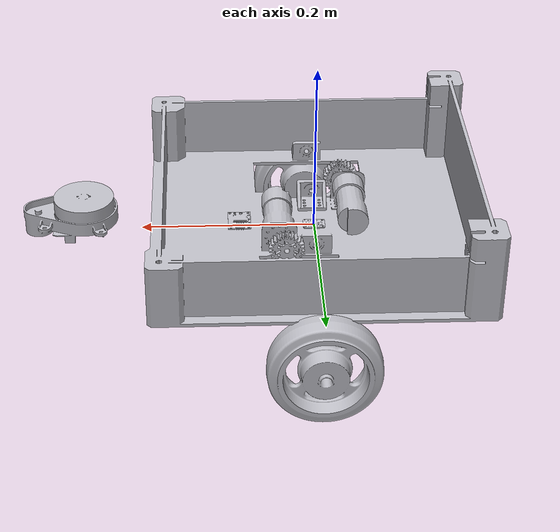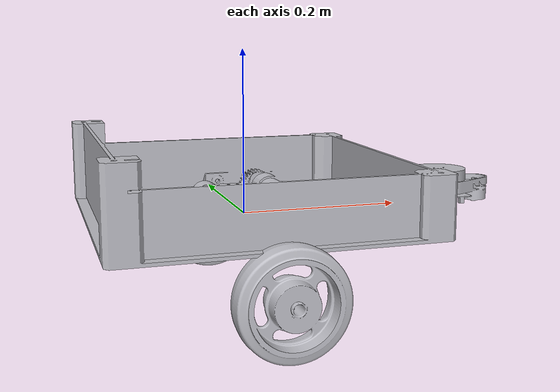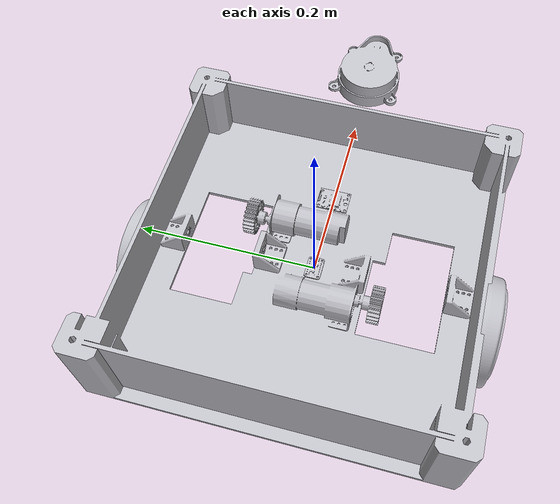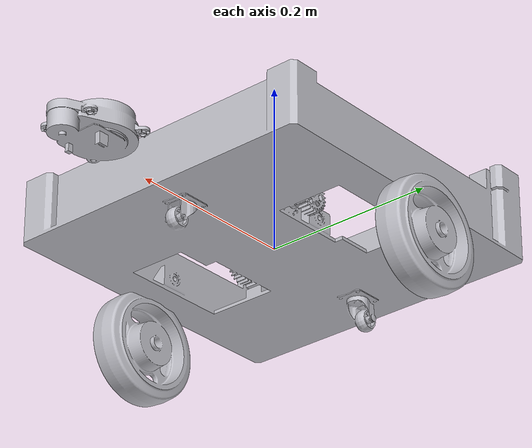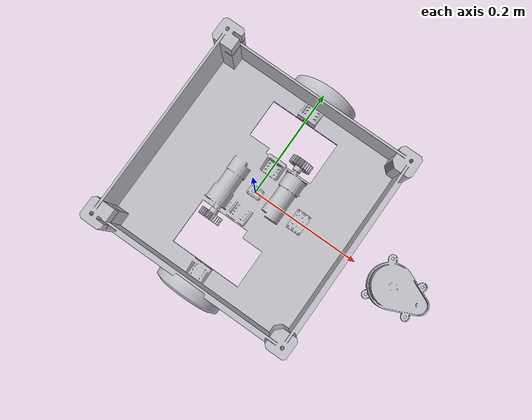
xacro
<?xml version="1.0" ?>
<robot name="mr_robot" xmlns:xacro="http://www.ros.org/wiki/xacro">

<xacro:include filename="$(find mr_robot_description)/urdf/materials.xacro" />
<xacro:include filename="$(find mr_robot_description)/urdf/mr_robot.trans" />
<xacro:include filename="$(find mr_robot_description)/urdf/mr_robot.gazebo" />

<!-- BASE FOOTPRINT LINK -->

<link name="base_footprint">
</link>

<joint name="base_link_joint" type="fixed">
  <parent link="base_footprint"/>
  <child link="base_link"/>
  <origin xyz="0 0 0" rpy="0 0 0"/>
</joint>

<link name="base_link">
  <inertial>
    <origin xyz="0.012766113385218509 0.001494146835147567 -0.03149101238341765" rpy="0 0 0"/>
    <mass value="12.614502148022185"/>
    <inertia ixx="0.186871" iyy="0.487701" izz="0.654211" ixy="0.000719" iyz="0.000234" ixz="-0.008931"/>
  </inertial>
  <visual>
    <origin xyz="0 0 0" rpy="0 0 0"/>
    <geometry>
      <mesh filename="file://$(find mr_robot_description)/meshes/base_link.stl" scale="0.001 0.001 0.001"/>
    </geometry>
    <material name="silver"/>
  </visual>
  <collision>
    <origin xyz="0 0 0" rpy="0 0 0"/>
    <geometry>
      <mesh filename="file://$(find mr_robot_description)/meshes/base_link.stl" scale="0.001 0.001 0.001"/>
    </geometry>
  </collision>
</link>

<link name="right_wheel__1">
  <inertial>
    <origin xyz="1.7607591147781841e-15 -0.01799999999998969 -8.17274483436159e-08" rpy="0 0 0"/>
    <mass value="2.2573668453470317"/>
    <inertia ixx="0.002744" iyy="0.005023" izz="0.002744" ixy="0.0" iyz="-0.0" ixz="-0.0"/>
  </inertial>
  <visual>
    <origin xyz="-0.0 0.172825 0.0556" rpy="0 0 0"/>
    <geometry>
      <mesh filename="file://$(find mr_robot_description)/meshes/right_wheel__1.stl" scale="0.001 0.001 0.001"/>
    </geometry>
    <material name="silver"/>
  </visual>
  <collision>
    <origin xyz="-0.0 0.172825 0.0556" rpy="0 0 0"/>
    <geometry>
      <mesh filename="file://$(find mr_robot_description)/meshes/right_wheel__1.stl" scale="0.001 0.001 0.001"/>
    </geometry>
  </collision>
</link>

<link name="left_wheel_1">
  <inertial>
    <origin xyz="-2.5183111525986615e-15 0.019999999999999296 1.594976928309677e-11" rpy="0 0 0"/>
    <mass value="2.257366845347031"/>
    <inertia ixx="0.002744" iyy="0.005023" izz="0.002744" ixy="0.0" iyz="-0.0" ixz="-0.0"/>
  </inertial>
  <visual>
    <origin xyz="0.0 -0.181075 0.0556" rpy="0 0 0"/>
    <geometry>
      <mesh filename="file://$(find mr_robot_description)/meshes/left_wheel_1.stl" scale="0.001 0.001 0.001"/>
    </geometry>
    <material name="silver"/>
  </visual>
  <collision>
    <origin xyz="0.0 -0.181075 0.0556" rpy="0 0 0"/>
    <geometry>
      <mesh filename="file://$(find mr_robot_description)/meshes/left_wheel_1.stl" scale="0.001 0.001 0.001"/>
    </geometry>
  </collision>
</link>

<link name="imu_1">
  <inertial>
    <origin xyz="0.0004855581971456934 1.4148081224101791e-05 0.0009685965633060389" rpy="0 0 0"/>
    <mass value="0.005695581362858868"/>
    <inertia ixx="0.0" iyy="0.0" izz="0.0" ixy="0.0" iyz="-0.0" ixz="-0.0"/>
  </inertial>
  <visual>
    <origin xyz="-0.0 -0.0 -0.0" rpy="0 0 0"/>
    <geometry>
      <mesh filename="file://$(find mr_robot_description)/meshes/imu_1.stl" scale="0.001 0.001 0.001"/>
    </geometry>
    <material name="silver"/>
  </visual>
  <collision>
    <origin xyz="-0.0 -0.0 -0.0" rpy="0 0 0"/>
    <geometry>
      <mesh filename="file://$(find mr_robot_description)/meshes/imu_1.stl" scale="0.001 0.001 0.001"/>
    </geometry>
  </collision>
</link>

<link name="gps_1">
  <inertial>
    <origin xyz="-0.0004788852143099154 0.0009359821785282274 0.0009128297098392937" rpy="0 0 0"/>
    <mass value="0.010140975940216021"/>
    <inertia ixx="1e-06" iyy="1e-06" izz="1e-06" ixy="0.0" iyz="-0.0" ixz="0.0"/>
  </inertial>
  <visual>
    <origin xyz="-0.087 -0.0 -0.0065" rpy="0 0 0"/>
    <geometry>
      <mesh filename="file://$(find mr_robot_description)/meshes/gps_1.stl" scale="0.001 0.001 0.001"/>
    </geometry>
    <material name="silver"/>
  </visual>
  <collision>
    <origin xyz="-0.087 -0.0 -0.0065" rpy="0 0 0"/>
    <geometry>
      <mesh filename="file://$(find mr_robot_description)/meshes/gps_1.stl" scale="0.001 0.001 0.001"/>
    </geometry>
  </collision>
</link>

<link name="Lidar_1">
  <inertial>
    <origin xyz="0.010770081312650281 6.0979034436917104e-05 0.016953604004055788" rpy="0 0 0"/>
    <mass value="1.190968470775162"/>
    <inertia ixx="0.000484" iyy="0.000863" izz="0.001091" ixy="-1e-06" iyz="2e-06" ixz="0.000116"/>
  </inertial>
  <visual>
    <origin xyz="-0.2625 -0.0 -0.0085" rpy="0 0 0"/>
    <geometry>
      <mesh filename="file://$(find mr_robot_description)/meshes/Lidar_1.stl" scale="0.001 0.001 0.001"/>
    </geometry>
    <material name="silver"/>
  </visual>
  <collision>
    <origin xyz="-0.2625 -0.0 -0.0085" rpy="0 0 0"/>
    <geometry>
      <mesh filename="file://$(find mr_robot_description)/meshes/Lidar_1.stl" scale="0.001 0.001 0.001"/>
    </geometry>
  </collision>
</link>

<joint name="right_motor_joint" type="continuous">
  <origin xyz="0.0 -0.172825 -0.0556" rpy="0 0 0"/>
  <parent link="base_link"/>
  <child link="right_wheel__1"/>
  <axis xyz="0.0 1.0 0.0"/>
</joint>

<joint name="left_motor_joint" type="continuous">
  <origin xyz="0.0 0.181075 -0.0556" rpy="0 0 0"/>
  <parent link="base_link"/>
  <child link="left_wheel_1"/>
  <axis xyz="-0.0 1.0 0.0"/>
</joint>

<joint name="Rigid 15" type="fixed">
  <origin xyz="0.0 0.0 0.0" rpy="0 0 0"/>
  <parent link="base_link"/>
  <child link="imu_1"/>
</joint>

<joint name="Rigid 16" type="fixed">
  <origin xyz="0.087 0.0 0.0065" rpy="0 0 0"/>
  <parent link="base_link"/>
  <child link="gps_1"/>
</joint>

<joint name="Rigid 17" type="fixed">
  <origin xyz="0.2625 0.0 0.0085" rpy="0 0 0"/>
  <parent link="base_link"/>
  <child link="Lidar_1"/>
</joint>

</robot>

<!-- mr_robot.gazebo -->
<robot name="mr_robot" xmlns:xacro="http://www.ros.org/wiki/xacro" >

<xacro:property name="body_color" value="Gazebo/Black" />
<xacro:property name="body_color2" value="Gazebo/Silver" />

<gazebo reference="base_link">
  <material>${body_color2}</material>
  <mu1>0.2</mu1>
  <mu2>0.2</mu2>
  <self_collide>true</self_collide>
  <gravity>true</gravity>
</gazebo>

<gazebo reference="right_wheel__1">
  <material>${body_color}</material>
  <mu1>0.2</mu1>
  <mu2>0.2</mu2>
  <self_collide>true</self_collide>
</gazebo>

<gazebo reference="left_wheel_1">
  <material>${body_color}</material>
  <mu1>0.2</mu1>
  <mu2>0.2</mu2>
  <self_collide>true</self_collide>
</gazebo>

<gazebo>
  <plugin name="gazebo_ros_joint_state_publisher" filename="libgazebo_ros_joint_state_publisher.so">
    <update_rate>20</update_rate>
    <joint_name>right_motor_joint</joint_name>
    <joint_name>left_motor_joint</joint_name>
  </plugin>
</gazebo>

<!-- Differential drive Plugin -->
<gazebo>

  <plugin name="differential_drive_controller" filename="libgazebo_ros_diff_drive.so">
    <commandTopic>cmd_vel</commandTopic>
    <left_joint>left_motor_joint</left_joint>
    <right_joint>right_motor_joint</right_joint>

    <wheel_separation>0.354</wheel_separation>
    <wheel_diameter>0.107</wheel_diameter>

    <max_wheel_torque>200</max_wheel_torque>
    <max_wheel_acceleration>30.0</max_wheel_acceleration>

    <odometry_frame>odom</odometry_frame>
    <robot_base_frame>base_footprint</robot_base_frame>
    <publish_odom>true</publish_odom>
    <publish_odom_tf>true</publish_odom_tf>
    <publish_wheel_tf>false</publish_wheel_tf>

    <update_rate>50</update_rate>
    <legacyMode>false</legacyMode>

</plugin>
</gazebo>

<gazebo reference="imu_1">
  <material>${body_color}</material>
  <mu1>0.2</mu1>
  <mu2>0.2</mu2>
  <self_collide>true</self_collide>
  <gravity>true</gravity>

  <sensor name="imu_sensor" type="imu">
    <always_on>true</always_on>
    <update_rate>100</update_rate>
    <visualize>true</visualize>
    <topic>__default_topic__</topic>
    <plugin filename="libgazebo_ros_imu_sensor.so" name="imu_plugin">
      <topicName>imu</topicName>
      <bodyName>imu_link</bodyName>
      <updateRateHZ>10.0</updateRateHZ>
      <gaussianNoise>0.0</gaussianNoise>
      <xyzOffset>0 0 0</xyzOffset>
      <rpyOffset>0 0 0</rpyOffset>
      <frameName>imu_link</frameName>
      <initialOrientationAsReference>false</initialOrientationAsReference>
    </plugin>
    <pose>0 0 0 0 0 0</pose>
  </sensor>
</gazebo>

<gazebo reference="gps_1">
  <material>${body_color}</material>
  <mu1>0.2</mu1>
  <mu2>0.2</mu2>
  <self_collide>true</self_collide>

  <sensor name="tb3_gps" type="gps">
    <always_on>true</always_on>
    <update_rate>1</update_rate>
    <pose>0 0 0 0 0 0</pose>
    <gps>
      <position_sensing>
        <horizontal>
          <noise type="gaussian">
            <mean>0.0</mean>
            <stddev>0.01</stddev>
          </noise>
        </horizontal>
        <vertical>
          <noise type="gaussian">
            <mean>0.0</mean>
            <stddev>0.01</stddev>
          </noise>
        </vertical>
      </position_sensing>
    </gps>
    <plugin name="my_gps_plugin" filename="libgazebo_ros_gps_sensor.so">
      <ros>
        <remapping>~/out:=/gps/fix</remapping>
      </ros>
    </plugin>
  </sensor>

</gazebo>

<gazebo reference="Lidar_1">
  <material>${body_color}</material>
  <mu1>0.2</mu1>
  <mu2>0.2</mu2>
  <self_collide>true</self_collide>

  <sensor name="laser" type="ray">
    <pose> 0 0 0 0 0 0 </pose>
    <visualize>true</visualize>
    <update_rate>10</update_rate>
    <ray>
      <scan>
        <horizontal>
          <samples>360</samples>
          <min_angle>-3.14</min_angle>
          <max_angle>3.14</max_angle>
        </horizontal>
      </scan>
      <range>
        <min>0.3</min>
        <max>12</max>
      </range>
    </ray>
    <plugin name="laser_controller" filename="libgazebo_ros_ray_sensor.so">
      <ros>
        <argument>~/out:=scan</argument>
        <use_sim_time>true</use_sim_time>
      </ros>
      <output_type>sensor_msgs/LaserScan</output_type>
      <frame_name>Lidar_1</frame_name>
    </plugin>
  </sensor>

</gazebo>

</robot>
